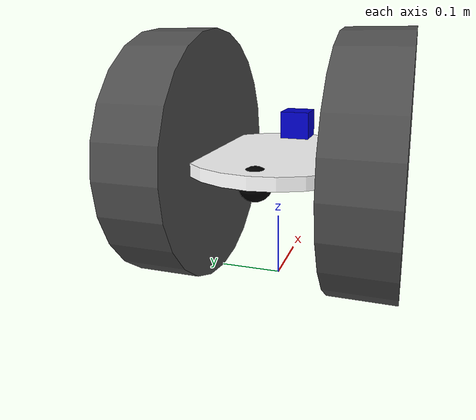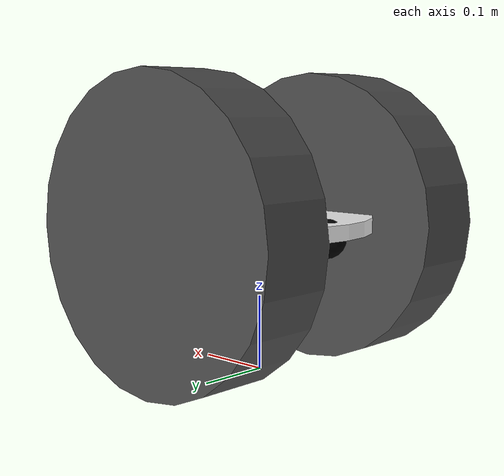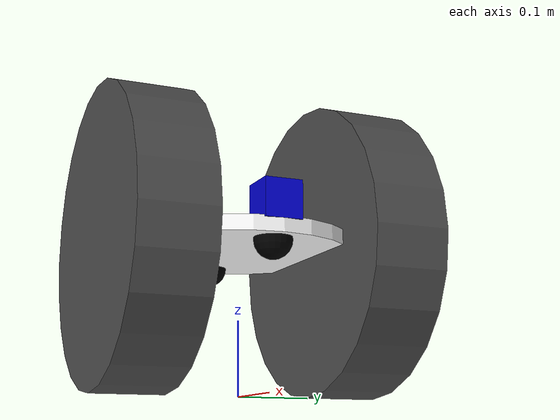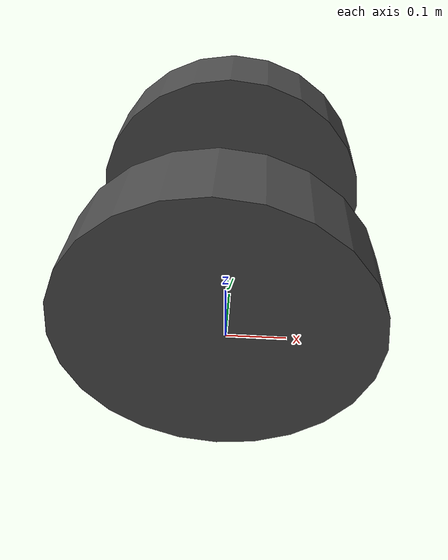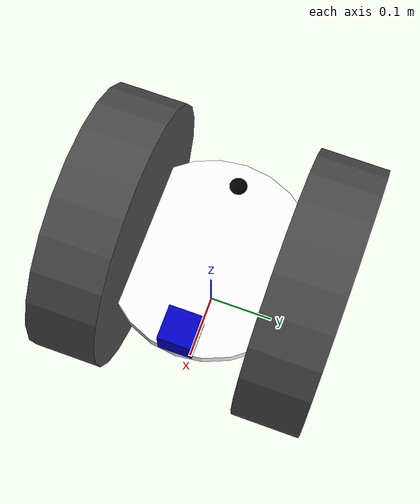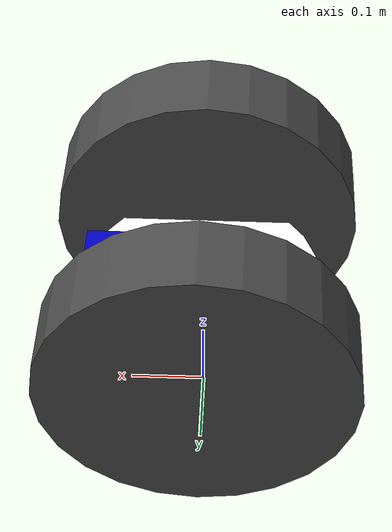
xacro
<?xml version="1.0"?>
<robot name="differential_wheeled_robot" xmlns:xacro="http://www.ros.org/wiki/xacro">

  <xacro:include filename="$(find lasmile_description)/urdf/wheel.xacro" />

<!-- Defining the colors used in this robot -->
  <material name="Black">
    <color rgba="0.0 0.0 0.0 1.0"/>
  </material>

  <material name="Red">
    <color rgba="0.8 0.0 0.0 1.0"/>
  </material>

  <material name="White">
    <color rgba="1.0 1.0 1.0 1.0"/>
  </material>

  <material name="Blue">
    <color rgba="0.0 0.0 0.8 1.0"/>
  </material>

  <!-- PROPERTY LIST -->
  <!--All units in m-kg-s-radians unit system -->
  <property name="M_PI" value="3.1415926535897931" />
  <property name="M_PI_2" value="1.570796327" />
  <property name="DEG_TO_RAD" value="0.017453293" />

  <!-- Main body radius and height -->
  <!-- Main Body Cylinder base   -->
  <property name="base_height" value="0.02" />
  <property name="base_radius" value="0.15" />
  <property name="base_mass" value="5" /> <!-- in kg-->

  <!-- caster wheel radius and height -->
  <!-- caster wheel mass -->
  <property name="caster_f_height" value="0.04" />
  <property name="caster_f_radius" value="0.025" />
  <property name="caster_f_mass" value="0.5" /> <!-- in kg-->

  <!-- caster wheel radius and height -->
  <!-- caster wheel mass -->
  <property name="caster_b_height" value="0.04" />
  <property name="caster_b_radius" value="0.025" />
  <property name="caster_b_mass" value="0.5" /> <!-- in kg-->

  <!-- Wheels -->

  <property name="wheel_mass" value="2.5" /> --> <!-- in kg-->

  <property name="base_x_origin_to_wheel_origin" value="0.25" />
  <property name="base_y_origin_to_wheel_origin" value="0.3" />
  <property name="base_z_origin_to_wheel_origin" value="0.0" />

  <!-- Hokuyo Laser scanner -->
  <property name="hokuyo_size" value="0.05" />

  <!-- Macro for calculating inertia of cylinder -->
  <macro name="cylinder_inertia" params="m r h">
    <inertia  ixx="${m*(3*r*r+h*h)/12}" ixy = "0" ixz = "0"
              iyy="${m*(3*r*r+h*h)/12}" iyz = "0"
              izz="${m*r*r/2}" />
  </macro>

  <!-- BASE-FOOTPRINT -->
  <!-- base_footprint is a fictitious link(frame) that is on the ground right below base_link origin -->
  <link name="base_footprint">
    <inertial>
      <mass value="0.0001" />
      <origin xyz="0 0 0" />
      <inertia ixx="0.0001" ixy="0.0" ixz="0.0"
          iyy="0.0001" iyz="0.0"
          izz="0.0001" />
    </inertial>
    <visual>
        <origin xyz="0 0 0" rpy="0 0 0" />
        <geometry>
            <box size="0.001 0.001 0.001" />
        </geometry>
    </visual>
  </link>

  <gazebo reference="base_footprint">
    <turnGravityOff>false</turnGravityOff>
  </gazebo>

  <joint name="base_footprint_joint" type="fixed">
    <origin xyz="0 0 ${wheel_radius - base_z_origin_to_wheel_origin}" rpy="0 0 0" />
    <parent link="base_footprint"/>
    <child link="base_link" />
  </joint>

  <!-- BASE-LINK -->
  <!--Actual body/chassis of the robot-->
  <link name="base_link">
    <inertial>
      <mass value="${base_mass}" />
      <origin xyz="0 0 0" />
      <!--The 3x3 rotational inertia matrix. -->
        <cylinder_inertia  m="${base_mass}" r="${base_radius}" h="${base_height}" />

    </inertial>
    <visual>
      <origin xyz="0 0 0" rpy="0 0 0" />
      <geometry>

          <cylinder length="${base_height}" radius="${base_radius}" />

      </geometry>
      <material name="White" />
    </visual>
    <collision>
      <origin xyz="0 0 0" rpy="0 0 0 " />
      <geometry>

          <cylinder length="${base_height}" radius="${base_radius}" />

      </geometry>
    </collision>
  </link>
  <gazebo reference="base_link">
    <material>Gazebo/White</material>
    <turnGravityOff>false</turnGravityOff>
  </gazebo>

<!--Caster front  -->

    <link name="caster_front_link">

    <visual>
      <origin xyz="0 0.02 0" rpy="${M_PI/2} 0 0" />
      <geometry>
	<sphere radius="${caster_f_radius}" />
      </geometry>
      <material name="Black" />
    </visual>

      <collision>
        <geometry>

	<sphere radius="${caster_f_radius}" />

        </geometry>
      <origin xyz="0 0.02 0" rpy="${M_PI/2} 0 0" />
      </collision>
      <inertial>
        <mass value="${caster_f_mass}" />
        <origin xyz="0 0 0" />
        <inertia ixx="0.001" ixy="0.0" ixz="0.0"
                 iyy="0.001" iyz="0.0"
                 izz="0.001" />
      </inertial>
    </link>

 <joint name="caster_front_joint" type="fixed">
      <parent link="base_link"/>
      <child link="caster_front_link"/>
      <origin xyz="0.115 0.0 0.007" rpy="${-M_PI/2} 0 0"/>
    </joint>

  <gazebo reference="caster_front_link">
    <turnGravityOff>false</turnGravityOff>
  </gazebo>

<!--Caster back  -->

    <link name="caster_back_link">

    <visual>
      <origin xyz="0.02 0.02 0 " rpy="${M_PI/2} 0 0" />

      <geometry>

	<sphere radius="${caster_b_radius}" />

      </geometry>
      <material name="Black" />
    </visual>

      <collision>
        <geometry>
		<sphere radius="${caster_b_radius}" />
        </geometry>
      <origin xyz="0 0.02 0 " rpy="${M_PI/2} 0 0" />
      </collision>
      <inertial>
        <mass value="${caster_b_mass}" />
        <origin xyz="0 0 0" />
        <inertia ixx="0.001" ixy="0.0" ixz="0.0"
                 iyy="0.001" iyz="0.0"
                 izz="0.001" />
      </inertial>
    </link>

    <joint name="caster_back_joint" type="fixed">
      <parent link="base_link"/>
      <child link="caster_back_link"/>
      <origin xyz="-0.135 0.0 0.009" rpy="${-M_PI/2} 0 0"/>
    </joint>

  <gazebo reference="caster_back_link">
    <turnGravityOff>false</turnGravityOff>
  </gazebo>

<!-- Wheel Definitions -->

  <wheel  lr="right" parent="base_link" translateX="0" translateY="0.5" flipY="1"/>
  <wheel  lr="left" parent="base_link" translateX="0" translateY="-0.5" flipY="1"/>

  <!-- SENSORS -->

  <!-- hokuyo -->

  <link name="hokuyo_link">
    <visual>
      <origin xyz="0 0 0" rpy="0 0 0" />
      <geometry>
        <box size="${hokuyo_size} ${hokuyo_size} ${hokuyo_size}"/>
      </geometry>
      <material name="Blue" />
    </visual>
  </link>
  <joint name="hokuyo_joint" type="fixed">
    <origin xyz="${base_radius - hokuyo_size/2} 0 ${base_height+hokuyo_size/4}" rpy="0 0 0" />
    <parent link="base_link"/>
    <child link="hokuyo_link" />
  </joint>
  <gazebo reference="hokuyo_link">
    <material>Gazebo/Blue</material>
    <turnGravityOff>false</turnGravityOff>
    <sensor type="ray" name="head_hokuyo_sensor">
      <pose>${hokuyo_size/2} 0 0 0 0 0</pose>
      <visualize>false</visualize>
      <update_rate>40</update_rate>
      <ray>
        <scan>
          <horizontal>
            <samples>720</samples>
            <resolution>1</resolution>
            <min_angle>-1.570796</min_angle>
            <max_angle>1.570796</max_angle>
          </horizontal>
        </scan>
        <range>
          <min>0.10</min>
          <max>10.0</max>
          <resolution>0.001</resolution>
        </range>
      </ray>
      <plugin name="gazebo_ros_head_hokuyo_controller" filename="libgazebo_ros_laser.so">
        <topicName>/scan</topicName>
        <frameName>hokuyo_link</frameName>
      </plugin>
    </sensor>
  </gazebo>

  <!-- Differential drive controller  -->
  <gazebo>
    <plugin name="differential_drive_controller" filename="libgazebo_ros_diff_drive.so">

      <rosDebugLevel>Debug</rosDebugLevel>
      <publishWheelTF>false</publishWheelTF>
      <robotNamespace>/</robotNamespace>
      <publishTf>1</publishTf>
      <publishWheelJointState>false</publishWheelJointState>
      <alwaysOn>true</alwaysOn>
      <updateRate>100.0</updateRate>
      <leftJoint>front_left_wheel_joint</leftJoint>
      <rightJoint>front_right_wheel_joint</rightJoint>
      <wheelSeparation>${2*base_radius}</wheelSeparation>
      <wheelDiameter>${2*wheel_radius}</wheelDiameter>
      <broadcastTF>1</broadcastTF>
      <wheelTorque>30</wheelTorque>
      <wheelAcceleration>1.8</wheelAcceleration>
      <commandTopic>cmd_vel</commandTopic>
      <odometryFrame>odom</odometryFrame>
      <odometryTopic>odom</odometryTopic>
      <robotBaseFrame>base_footprint</robotBaseFrame>

    </plugin>
  </gazebo>

</robot>

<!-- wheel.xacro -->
<robot name="wheel" xmlns:xacro="http://www.ros.org/wiki/xacro">

  <!-- Wheels -->
  <property name="wheel_radius" value="0.2" />
  <property name="wheel_height" value="0.1" />
  <property name="wheel_mass" value="2.5" /> <!-- in kg-->

  <property name="base_x_origin_to_wheel_origin" value="0.25" />
  <property name="base_y_origin_to_wheel_origin" value="0.3" />
  <property name="base_z_origin_to_wheel_origin" value="0.0" />

  <macro name="cylinder_inertia" params="m r h">
    <inertia  ixx="${m*(3*r*r+h*h)/12}" ixy = "0" ixz = "0"
              iyy="${m*(3*r*r+h*h)/12}" iyz = "0"
              izz="${m*r*r/2}" />
  </macro>

  <xacro:macro name="wheel" params="lr parent translateX translateY flipY"> <!-- lr: left, right -->
    <link name="${lr}_wheel">
      <visual>
        <origin xyz="0 0 0" rpy="${flipY*M_PI/2} 0 0" />
        <geometry>
          <cylinder length="${wheel_height}" radius="${wheel_radius}" />
        </geometry>
        <material name="DarkGray" />
      </visual>

      <collision>
        <origin xyz="0 0 0" rpy="${flipY*M_PI/2} 0 0" />
        <geometry>
          <cylinder length="${wheel_height}" radius="${wheel_radius}" />
        </geometry>
      </collision>
      <inertial>
        <mass value="${wheel_mass}" />
        <origin xyz="0 0 0" />
        <cylinder_inertia  m="${wheel_mass}" r="${wheel_radius}" h="${wheel_height}" />
      </inertial>
    </link>

      <gazebo reference="${lr}_wheel">
      <mu1 value="1.0"/>
      <mu2 value="1.0"/>
      <kp  value="10000000.0" />
      <kd  value="1.0" />
      <fdir1 value="1 0 0"/>
      <material>Gazebo/Grey</material>
      <turnGravityOff>false</turnGravityOff>
    </gazebo>

    <joint name="${lr}_wheel_joint" type="continuous">
      <parent link="${parent}"/>
      <child link="${lr}_wheel"/>
      <origin xyz="${translateX * base_x_origin_to_wheel_origin} ${translateY * base_y_origin_to_wheel_origin} ${base_z_origin_to_wheel_origin}" rpy="0 0 0" />
      <axis xyz="0 1 0" rpy="0 0 0" />
      <limit effort="100" velocity="100"/>
      <joint_properties damping="0.0" friction="0.0"/>
    </joint>

     <!-- Transmission is important to link the joints and the controller -->
    <transmission name="${lr}_wheel_joint_trans">
    <type>transmission_interface/SimpleTransmission</type>
    <joint name="${lr}_wheel_joint">
	<hardwareInterface>EffortJointInterface</hardwareInterface>
    </joint>
    <actuator name="${lr}_wheel_joint_motor">
        <hardwareInterface>EffortJointInterface</hardwareInterface>
        <mechanicalReduction>1</mechanicalReduction>
      </actuator>
    </transmission>

  </xacro:macro>
</robot>
